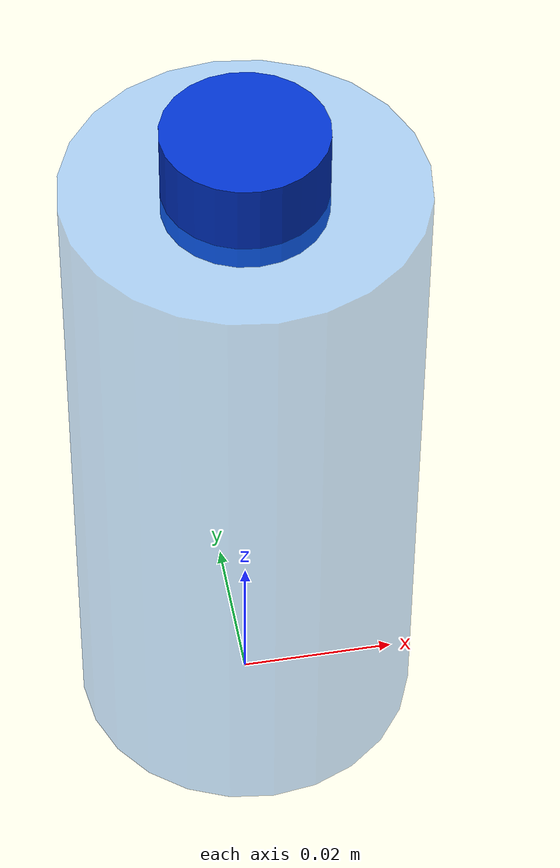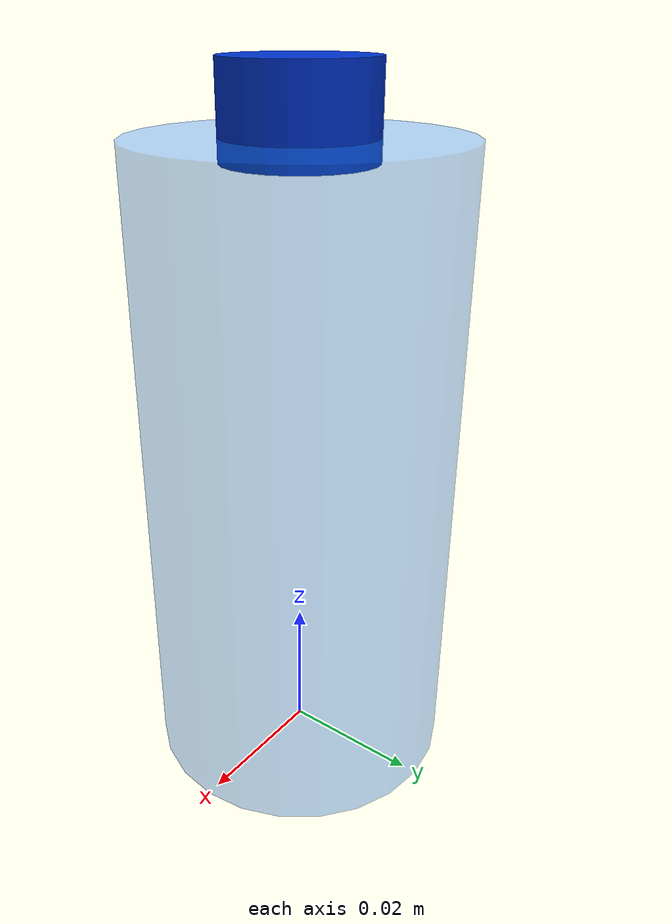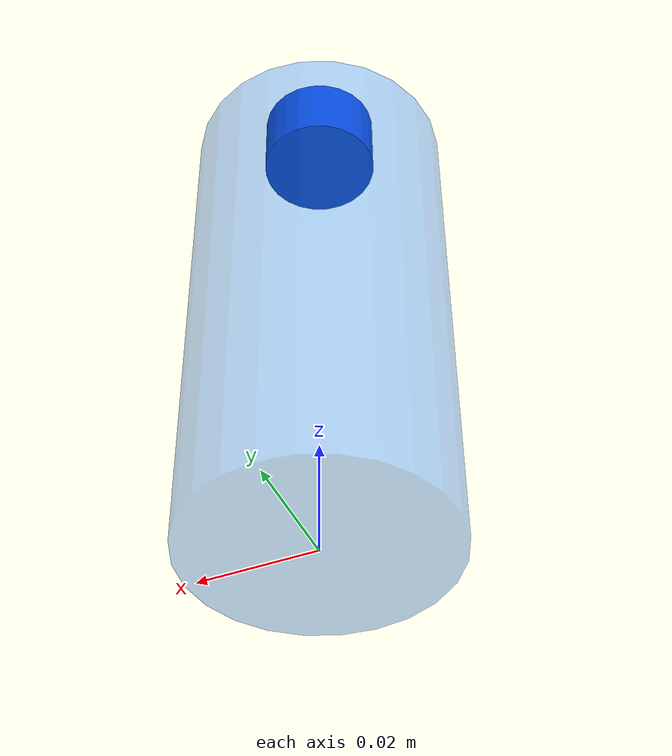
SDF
<sdf version="1.6">
  <model name="waste_plastic">
    <pose>0 0 0 0 0 0</pose>
    <link name="body">
      <inertial>
        <mass>0.06</mass>
        <inertia>
          <ixx>0.00008</ixx>
          <iyy>0.00008</iyy>
          <izz>0.00002</izz>
          <ixy>0</ixy>
          <ixz>0</ixz>
          <iyz>0</iyz>
        </inertia>
      </inertial>

      <collision name="collision">
        <pose>0 0 0.045 0 0 0</pose>
        <geometry>
          <cylinder>
            <radius>0.022</radius>
            <length>0.09</length>
          </cylinder>
        </geometry>
        <surface>
          <friction>
            <ode>
              <mu>8.0</mu>
              <mu2>8.0</mu2>
            </ode>
          </friction>
        </surface>
      </collision>

      <visual name="visual_body">
        <pose>0 0 0.045 0 0 0</pose>
        <geometry>
          <cylinder>
            <radius>0.022</radius>
            <length>0.09</length>
          </cylinder>
        </geometry>
        <material>
          <ambient>0.1 0.5 1.0 0.35</ambient>
          <diffuse>0.1 0.5 1.0 0.35</diffuse>
          <specular>0.2 0.2 0.2 1</specular>
        </material>
      </visual>

      <visual name="visual_cap">
        <pose>0 0 0.093 0 0 0</pose>
        <geometry>
          <cylinder>
            <radius>0.010</radius>
            <length>0.012</length>
          </cylinder>
        </geometry>
        <material>
          <ambient>0.0 0.2 0.8 1</ambient>
          <diffuse>0.0 0.2 0.8 1</diffuse>
        </material>
      </visual>
    </link>
  </model>
</sdf>
